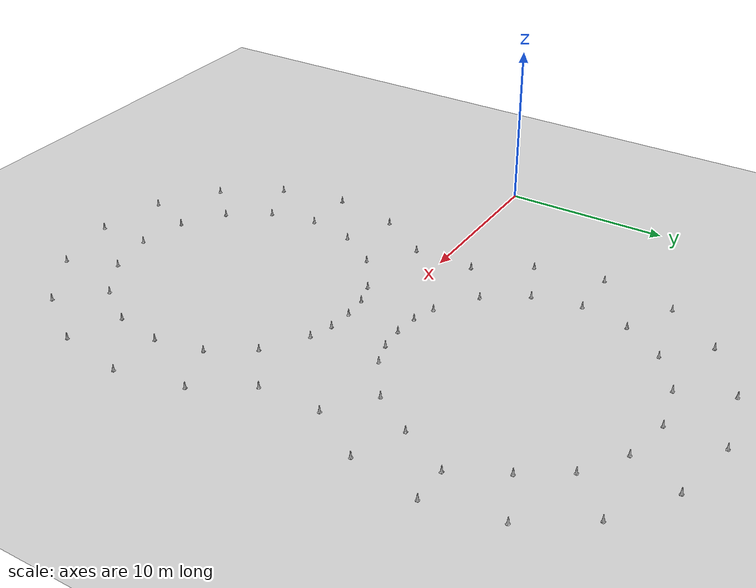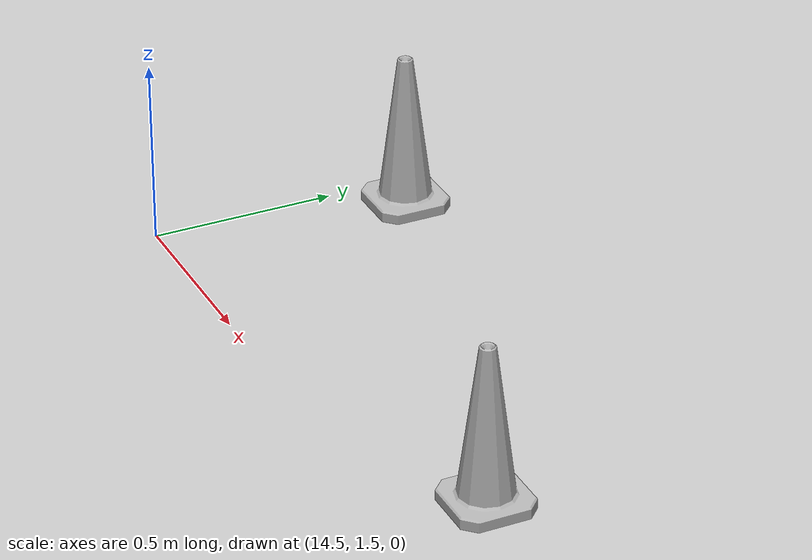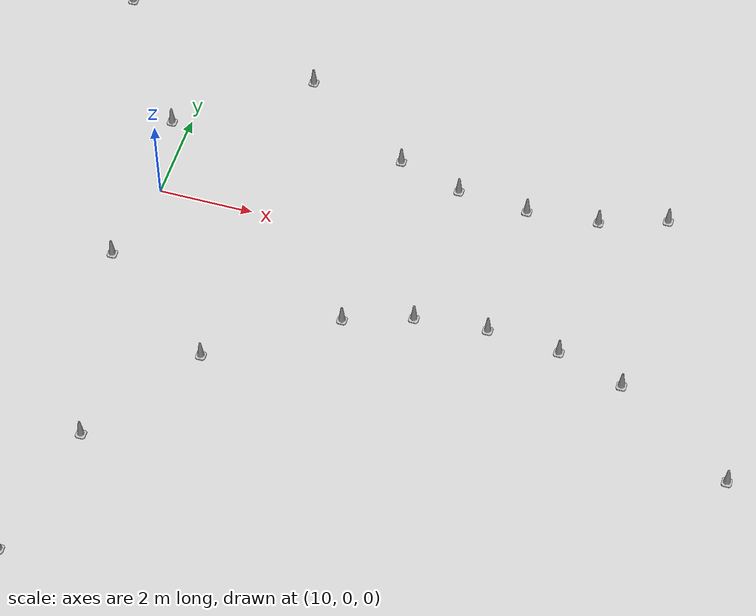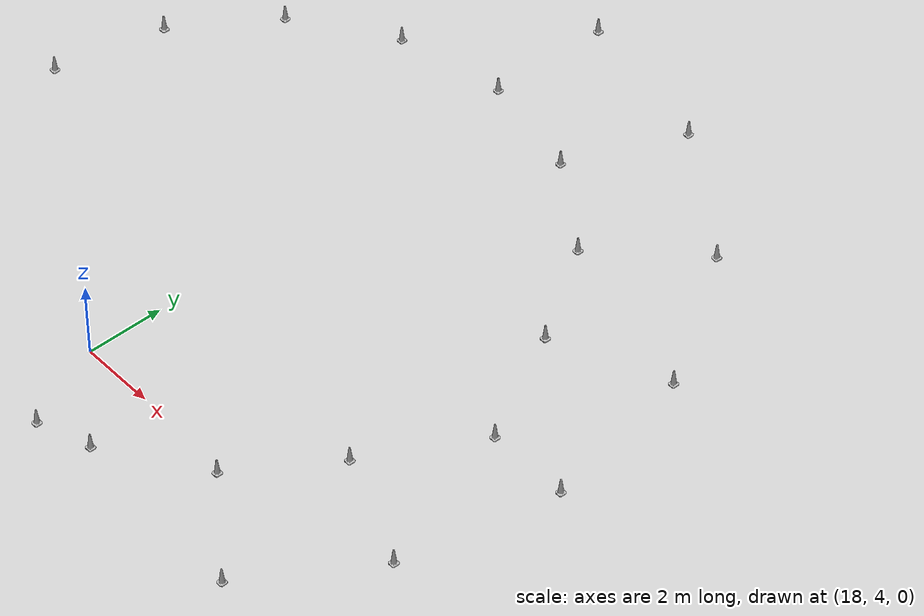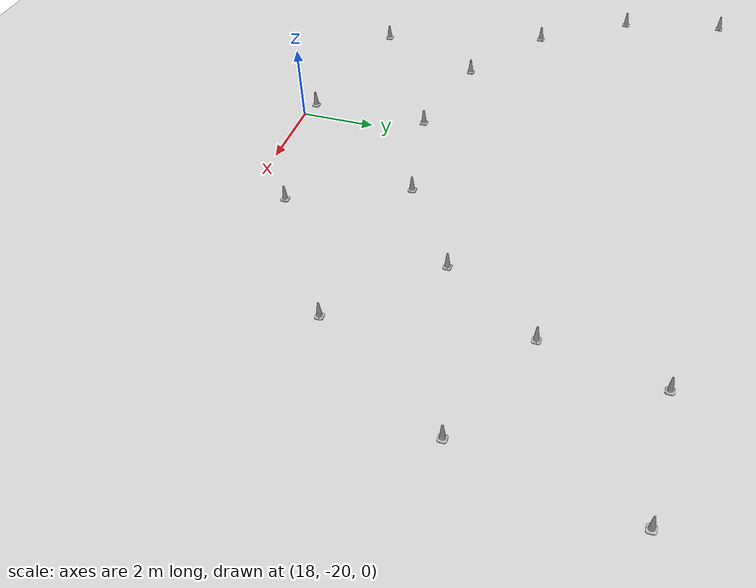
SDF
<sdf version="1.6">
 <world name="default">
  <light name="sun" type="directional">
   <pose>0 0 10 0 -0 0</pose>
   <diffuse>0.8 0.8 0.8 1</diffuse>
   <specular>0.2 0.2 0.2 1</specular>
   <attenuation>
    <range>1000</range>
    <constant>0.9</constant>
    <linear>0.01</linear>
    <quadratic>0.001</quadratic>
   </attenuation>
   <direction>-0.5 0.1 -0.9</direction>
  </light>
  <model name="ground_plane">
   <pose>19 0 0 0 -0 0</pose>
   <static>1</static>
   <link name="link">
    <collision name="collision">
     <geometry><plane><normal>0 0 1</normal><size>100 100</size></plane></geometry>
     <surface><friction><ode><mu>100</mu><mu2>50</mu2></ode></friction></surface>
    </collision>
    <visual name="visual">
     <cast_shadows>0</cast_shadows>
     <geometry><plane><normal>0 0 1</normal><size>100 100</size></plane></geometry>
     <material>
      <script><uri>file://media/materials/scripts/gazebo.material</uri><name>Gazebo/Grey</name></script>
     </material>
    </visual>
   </link>
  </model>
  <gravity>0 0 -9.8</gravity>
  <magnetic_field>6e-06 2.3e-05 -4.2e-05</magnetic_field>
  <atmosphere type="adiabatic"/>
  <physics name="default_physics" default="0" type="ode">
   <max_step_size>0.001</max_step_size>
   <real_time_factor>1</real_time_factor>
   <real_time_update_rate>1000</real_time_update_rate>
  </physics>
  <scene><ambient>0.4 0.4 0.4 1</ambient><background>0.7 0.7 0.7 1</background><shadows>1</shadows></scene>
  <spherical_coordinates>
   <surface_model>EARTH_WGS84</surface_model>
   <latitude_deg>0</latitude_deg>
   <longitude_deg>0</longitude_deg>
   <elevation>0</elevation>
   <heading_deg>0</heading_deg>
  </spherical_coordinates>
  <model name="Construction Cone">
   <link name="link">
    <collision name="collision">
     <geometry>
      <mesh><scale>4 4 4</scale><uri>model://construction_cone/meshes/construction_cone.dae</uri></mesh>
     </geometry>
    </collision>
    <visual name="visual">
     <geometry>
      <mesh><scale>4 4 4</scale><uri>model://construction_cone/meshes/construction_cone.dae</uri></mesh>
     </geometry>
    </visual>
    <inertial>
     <inertia><ixx>1</ixx><ixy>0</ixy><ixz>0</ixz><iyy>1</iyy><iyz>0</iyz><izz>1</izz></inertia>
     <mass>1</mass>
    </inertial>
   </link>
   <pose>17.5 1.6 -1e-06 2e-06 -2e-06 -0</pose>
  </model>
  <model name="Construction Cone_0">
   <link name="link">
    <collision name="collision">
     <geometry>
      <mesh><scale>4 4 4</scale><uri>model://construction_cone/meshes/construction_cone.dae</uri></mesh>
     </geometry>
    </collision>
    <visual name="visual">
     <geometry>
      <mesh><scale>4 4 4</scale><uri>model://construction_cone/meshes/construction_cone.dae</uri></mesh>
     </geometry>
    </visual>
    <inertial>
     <inertia><ixx>1</ixx><ixy>0</ixy><ixz>0</ixz><iyy>1</iyy><iyz>0</iyz><izz>1</izz></inertia>
     <mass>1</mass>
    </inertial>
   </link>
   <pose>17.5 -1.6 -3e-06 1e-06 -0 0</pose>
  </model>
  <model name="Construction Cone_1">
   <link name="link">
    <collision name="collision">
     <geometry>
      <mesh><scale>4 4 4</scale><uri>model://construction_cone/meshes/construction_cone.dae</uri></mesh>
     </geometry>
    </collision>
    <visual name="visual">
     <geometry>
      <mesh><scale>4 4 4</scale><uri>model://construction_cone/meshes/construction_cone.dae</uri></mesh>
     </geometry>
    </visual>
    <inertial>
     <inertia><ixx>1</ixx><ixy>0</ixy><ixz>0</ixz><iyy>1</iyy><iyz>0</iyz><izz>1</izz></inertia>
     <mass>1</mass>
    </inertial>
   </link>
   <pose>20.3797 2.1728 -0 1e-06 -2e-06 -0</pose>
  </model>
  <model name="Construction Cone_1_clone">
   <link name="link">
    <collision name="collision">
     <geometry>
      <mesh><scale>4 4 4</scale><uri>model://construction_cone/meshes/construction_cone.dae</uri></mesh>
     </geometry>
    </collision>
    <visual name="visual">
     <geometry>
      <mesh><scale>4 4 4</scale><uri>model://construction_cone/meshes/construction_cone.dae</uri></mesh>
     </geometry>
    </visual>
    <inertial>
     <inertia><ixx>1</ixx><ixy>0</ixy><ixz>0</ixz><iyy>1</iyy><iyz>0</iyz><izz>1</izz></inertia>
     <mass>1</mass>
    </inertial>
   </link>
   <pose>20.3797 -2.1728 -3e-06 -1e-06 0 0</pose>
  </model>
  <model name="Construction Cone_1_clone_0">
   <link name="link">
    <collision name="collision">
     <geometry>
      <mesh><scale>4 4 4</scale><uri>model://construction_cone/meshes/construction_cone.dae</uri></mesh>
     </geometry>
    </collision>
    <visual name="visual">
     <geometry>
      <mesh><scale>4 4 4</scale><uri>model://construction_cone/meshes/construction_cone.dae</uri></mesh>
     </geometry>
    </visual>
    <inertial>
     <inertia><ixx>1</ixx><ixy>0</ixy><ixz>0</ixz><iyy>1</iyy><iyz>0</iyz><izz>1</izz></inertia>
     <mass>1</mass>
    </inertial>
   </link>
   <pose>22.8209 3.804 -1e-05 0 -0 0</pose>
  </model>
  <model name="Construction Cone_1_clone_1">
   <link name="link">
    <collision name="collision">
     <geometry>
      <mesh><scale>4 4 4</scale><uri>model://construction_cone/meshes/construction_cone.dae</uri></mesh>
     </geometry>
    </collision>
    <visual name="visual">
     <geometry>
      <mesh><scale>4 4 4</scale><uri>model://construction_cone/meshes/construction_cone.dae</uri></mesh>
     </geometry>
    </visual>
    <inertial>
     <inertia><ixx>1</ixx><ixy>0</ixy><ixz>0</ixz><iyy>1</iyy><iyz>0</iyz><izz>1</izz></inertia>
     <mass>1</mass>
    </inertial>
   </link>
   <pose>24.4522 6.2453 -6e-06 0 1e-06 0</pose>
  </model>
  <model name="Construction Cone_1_clone_2">
   <link name="link">
    <collision name="collision">
     <geometry>
      <mesh><scale>4 4 4</scale><uri>model://construction_cone/meshes/construction_cone.dae</uri></mesh>
     </geometry>
    </collision>
    <visual name="visual">
     <geometry>
      <mesh><scale>4 4 4</scale><uri>model://construction_cone/meshes/construction_cone.dae</uri></mesh>
     </geometry>
    </visual>
    <inertial>
     <inertia><ixx>1</ixx><ixy>0</ixy><ixz>0</ixz><iyy>1</iyy><iyz>0</iyz><izz>1</izz></inertia>
     <mass>1</mass>
    </inertial>
   </link>
   <pose>26.025 9.125 -1e-05 -1e-06 1e-06 0</pose>
  </model>
  <model name="Construction Cone_1_clone_3">
   <link name="link">
    <collision name="collision">
     <geometry>
      <mesh><scale>4 4 4</scale><uri>model://construction_cone/meshes/construction_cone.dae</uri></mesh>
     </geometry>
    </collision>
    <visual name="visual">
     <geometry>
      <mesh><scale>4 4 4</scale><uri>model://construction_cone/meshes/construction_cone.dae</uri></mesh>
     </geometry>
    </visual>
    <inertial>
     <inertia><ixx>1</ixx><ixy>0</ixy><ixz>0</ixz><iyy>1</iyy><iyz>0</iyz><izz>1</izz></inertia>
     <mass>1</mass>
    </inertial>
   </link>
   <pose>22.8209 -3.804 -1e-06 1e-06 1e-06 0</pose>
  </model>
  <model name="Construction Cone_1_clone_4">
   <link name="link">
    <collision name="collision">
     <geometry>
      <mesh><scale>4 4 4</scale><uri>model://construction_cone/meshes/construction_cone.dae</uri></mesh>
     </geometry>
    </collision>
    <visual name="visual">
     <geometry>
      <mesh><scale>4 4 4</scale><uri>model://construction_cone/meshes/construction_cone.dae</uri></mesh>
     </geometry>
    </visual>
    <inertial>
     <inertia><ixx>1</ixx><ixy>0</ixy><ixz>0</ixz><iyy>1</iyy><iyz>0</iyz><izz>1</izz></inertia>
     <mass>1</mass>
    </inertial>
   </link>
   <pose>24.4522 -6.2453 -9e-06 1e-06 -2e-06 -0</pose>
  </model>
  <model name="Construction Cone_1_clone_5">
   <link name="link">
    <collision name="collision">
     <geometry>
      <mesh><scale>4 4 4</scale><uri>model://construction_cone/meshes/construction_cone.dae</uri></mesh>
     </geometry>
    </collision>
    <visual name="visual">
     <geometry>
      <mesh><scale>4 4 4</scale><uri>model://construction_cone/meshes/construction_cone.dae</uri></mesh>
     </geometry>
    </visual>
    <inertial>
     <inertia><ixx>1</ixx><ixy>0</ixy><ixz>0</ixz><iyy>1</iyy><iyz>0</iyz><izz>1</izz></inertia>
     <mass>1</mass>
    </inertial>
   </link>
   <pose>25.025 -9.125 -3e-06 1e-06 -0 0</pose>
  </model>
  <model name="Construction Cone_1_clone_6">
   <link name="link">
    <collision name="collision">
     <geometry>
      <mesh><scale>4 4 4</scale><uri>model://construction_cone/meshes/construction_cone.dae</uri></mesh>
     </geometry>
    </collision>
    <visual name="visual">
     <geometry>
      <mesh><scale>4 4 4</scale><uri>model://construction_cone/meshes/construction_cone.dae</uri></mesh>
     </geometry>
    </visual>
    <inertial>
     <inertia><ixx>1</ixx><ixy>0</ixy><ixz>0</ixz><iyy>1</iyy><iyz>0</iyz><izz>1</izz></inertia>
     <mass>1</mass>
    </inertial>
   </link>
   <pose>24.4522 12.004 -8e-06 0 -4e-06 0</pose>
  </model>
  <model name="Construction Cone_1_clone_7">
   <link name="link">
    <collision name="collision">
     <geometry>
      <mesh><scale>4 4 4</scale><uri>model://construction_cone/meshes/construction_cone.dae</uri></mesh>
     </geometry>
    </collision>
    <visual name="visual">
     <geometry>
      <mesh><scale>4 4 4</scale><uri>model://construction_cone/meshes/construction_cone.dae</uri></mesh>
     </geometry>
    </visual>
    <inertial>
     <inertia><ixx>1</ixx><ixy>0</ixy><ixz>0</ixz><iyy>1</iyy><iyz>0</iyz><izz>1</izz></inertia>
     <mass>1</mass>
    </inertial>
   </link>
   <pose>22.8209 14.446 -3e-06 0 -0 0</pose>
  </model>
  <model name="Construction Cone_1_clone_8">
   <link name="link">
    <collision name="collision">
     <geometry>
      <mesh><scale>4 4 4</scale><uri>model://construction_cone/meshes/construction_cone.dae</uri></mesh>
     </geometry>
    </collision>
    <visual name="visual">
     <geometry>
      <mesh><scale>4 4 4</scale><uri>model://construction_cone/meshes/construction_cone.dae</uri></mesh>
     </geometry>
    </visual>
    <inertial>
     <inertia><ixx>1</ixx><ixy>0</ixy><ixz>0</ixz><iyy>1</iyy><iyz>0</iyz><izz>1</izz></inertia>
     <mass>1</mass>
    </inertial>
   </link>
   <pose>20.3797 16.0772 -8e-06 2e-06 -1e-06 -0</pose>
  </model>
  <model name="Construction Cone_1_clone_9">
   <link name="link">
    <collision name="collision">
     <geometry>
      <mesh><scale>4 4 4</scale><uri>model://construction_cone/meshes/construction_cone.dae</uri></mesh>
     </geometry>
    </collision>
    <visual name="visual">
     <geometry>
      <mesh><scale>4 4 4</scale><uri>model://construction_cone/meshes/construction_cone.dae</uri></mesh>
     </geometry>
    </visual>
    <inertial>
     <inertia><ixx>1</ixx><ixy>0</ixy><ixz>0</ixz><iyy>1</iyy><iyz>0</iyz><izz>1</izz></inertia>
     <mass>1</mass>
    </inertial>
   </link>
   <pose>17.5 16.65 -2e-06 1e-06 -0 0</pose>
  </model>
  <model name="Construction Cone_1_clone_10">
   <link name="link">
    <collision name="collision">
     <geometry>
      <mesh><scale>4 4 4</scale><uri>model://construction_cone/meshes/construction_cone.dae</uri></mesh>
     </geometry>
    </collision>
    <visual name="visual">
     <geometry>
      <mesh><scale>4 4 4</scale><uri>model://construction_cone/meshes/construction_cone.dae</uri></mesh>
     </geometry>
    </visual>
    <inertial>
     <inertia><ixx>1</ixx><ixy>0</ixy><ixz>0</ixz><iyy>1</iyy><iyz>0</iyz><izz>1</izz></inertia>
     <mass>1</mass>
    </inertial>
   </link>
   <pose>24.4522 -12.0047 -4e-06 2e-06 -1e-06 -0</pose>
  </model>
  <model name="Construction Cone_1_clone_11">
   <link name="link">
    <collision name="collision">
     <geometry>
      <mesh><scale>4 4 4</scale><uri>model://construction_cone/meshes/construction_cone.dae</uri></mesh>
     </geometry>
    </collision>
    <visual name="visual">
     <geometry>
      <mesh><scale>4 4 4</scale><uri>model://construction_cone/meshes/construction_cone.dae</uri></mesh>
     </geometry>
    </visual>
    <inertial>
     <inertia><ixx>1</ixx><ixy>0</ixy><ixz>0</ixz><iyy>1</iyy><iyz>0</iyz><izz>1</izz></inertia>
     <mass>1</mass>
    </inertial>
   </link>
   <pose>22.8209 -14.446 -9e-06 1e-06 -2e-06 -0</pose>
  </model>
  <model name="Construction Cone_1_clone_12">
   <link name="link">
    <collision name="collision">
     <geometry>
      <mesh><scale>4 4 4</scale><uri>model://construction_cone/meshes/construction_cone.dae</uri></mesh>
     </geometry>
    </collision>
    <visual name="visual">
     <geometry>
      <mesh><scale>4 4 4</scale><uri>model://construction_cone/meshes/construction_cone.dae</uri></mesh>
     </geometry>
    </visual>
    <inertial>
     <inertia><ixx>1</ixx><ixy>0</ixy><ixz>0</ixz><iyy>1</iyy><iyz>0</iyz><izz>1</izz></inertia>
     <mass>1</mass>
    </inertial>
   </link>
   <pose>20.3797 -16.0772 -6e-06 2e-06 -1e-06 -0</pose>
  </model>
  <model name="Construction Cone_1_clone_13">
   <link name="link">
    <collision name="collision">
     <geometry>
      <mesh><scale>4 4 4</scale><uri>model://construction_cone/meshes/construction_cone.dae</uri></mesh>
     </geometry>
    </collision>
    <visual name="visual">
     <geometry>
      <mesh><scale>4 4 4</scale><uri>model://construction_cone/meshes/construction_cone.dae</uri></mesh>
     </geometry>
    </visual>
    <inertial>
     <inertia><ixx>1</ixx><ixy>0</ixy><ixz>0</ixz><iyy>1</iyy><iyz>0</iyz><izz>1</izz></inertia>
     <mass>1</mass>
    </inertial>
   </link>
   <pose>17.5 -16.65 -9e-06 -1e-06 0 0</pose>
  </model>
  <model name="Construction Cone_1_clone_14">
   <link name="link">
    <collision name="collision">
     <geometry>
      <mesh><scale>4 4 4</scale><uri>model://construction_cone/meshes/construction_cone.dae</uri></mesh>
     </geometry>
    </collision>
    <visual name="visual">
     <geometry>
      <mesh><scale>4 4 4</scale><uri>model://construction_cone/meshes/construction_cone.dae</uri></mesh>
     </geometry>
    </visual>
    <inertial>
     <inertia><ixx>1</ixx><ixy>0</ixy><ixz>0</ixz><iyy>1</iyy><iyz>0</iyz><izz>1</izz></inertia>
     <mass>1</mass>
    </inertial>
   </link>
   <pose>14.6203 2.1728 0 -1e-06 1e-06 0</pose>
  </model>
  <model name="Construction Cone_1_clone_15">
   <link name="link">
    <collision name="collision">
     <geometry>
      <mesh><scale>4 4 4</scale><uri>model://construction_cone/meshes/construction_cone.dae</uri></mesh>
     </geometry>
    </collision>
    <visual name="visual">
     <geometry>
      <mesh><scale>4 4 4</scale><uri>model://construction_cone/meshes/construction_cone.dae</uri></mesh>
     </geometry>
    </visual>
    <inertial>
     <inertia><ixx>1</ixx><ixy>0</ixy><ixz>0</ixz><iyy>1</iyy><iyz>0</iyz><izz>1</izz></inertia>
     <mass>1</mass>
    </inertial>
   </link>
   <pose>12.1791 3.804 -9e-06 0 -1e-06 0</pose>
  </model>
  <model name="Construction Cone_1_clone_16">
   <link name="link">
    <collision name="collision">
     <geometry>
      <mesh><scale>4 4 4</scale><uri>model://construction_cone/meshes/construction_cone.dae</uri></mesh>
     </geometry>
    </collision>
    <visual name="visual">
     <geometry>
      <mesh><scale>4 4 4</scale><uri>model://construction_cone/meshes/construction_cone.dae</uri></mesh>
     </geometry>
    </visual>
    <inertial>
     <inertia><ixx>1</ixx><ixy>0</ixy><ixz>0</ixz><iyy>1</iyy><iyz>0</iyz><izz>1</izz></inertia>
     <mass>1</mass>
    </inertial>
   </link>
   <pose>10.5478 6.2453 -8e-06 0 -0 0</pose>
  </model>
  <model name="Construction Cone_1_clone_17">
   <link name="link">
    <collision name="collision">
     <geometry>
      <mesh><scale>4 4 4</scale><uri>model://construction_cone/meshes/construction_cone.dae</uri></mesh>
     </geometry>
    </collision>
    <visual name="visual">
     <geometry>
      <mesh><scale>4 4 4</scale><uri>model://construction_cone/meshes/construction_cone.dae</uri></mesh>
     </geometry>
    </visual>
    <inertial>
     <inertia><ixx>1</ixx><ixy>0</ixy><ixz>0</ixz><iyy>1</iyy><iyz>0</iyz><izz>1</izz></inertia>
     <mass>1</mass>
    </inertial>
   </link>
   <pose>9.975 9.125 -2e-06 0 -0 0</pose>
  </model>
  <model name="Construction Cone_1_clone_18">
   <link name="link">
    <collision name="collision">
     <geometry>
      <mesh><scale>4 4 4</scale><uri>model://construction_cone/meshes/construction_cone.dae</uri></mesh>
     </geometry>
    </collision>
    <visual name="visual">
     <geometry>
      <mesh><scale>4 4 4</scale><uri>model://construction_cone/meshes/construction_cone.dae</uri></mesh>
     </geometry>
    </visual>
    <inertial>
     <inertia><ixx>1</ixx><ixy>0</ixy><ixz>0</ixz><iyy>1</iyy><iyz>0</iyz><izz>1</izz></inertia>
     <mass>1</mass>
    </inertial>
   </link>
   <pose>10.5478 12.004 0 0 2e-06 0</pose>
  </model>
  <model name="Construction Cone_1_clone_19">
   <link name="link">
    <collision name="collision">
     <geometry>
      <mesh><scale>4 4 4</scale><uri>model://construction_cone/meshes/construction_cone.dae</uri></mesh>
     </geometry>
    </collision>
    <visual name="visual">
     <geometry>
      <mesh><scale>4 4 4</scale><uri>model://construction_cone/meshes/construction_cone.dae</uri></mesh>
     </geometry>
    </visual>
    <inertial>
     <inertia><ixx>1</ixx><ixy>0</ixy><ixz>0</ixz><iyy>1</iyy><iyz>0</iyz><izz>1</izz></inertia>
     <mass>1</mass>
    </inertial>
   </link>
   <pose>12.1791 14.446 -3e-06 0 1e-06 0</pose>
  </model>
  <model name="Construction Cone_1_clone_20">
   <link name="link">
    <collision name="collision">
     <geometry>
      <mesh><scale>4 4 4</scale><uri>model://construction_cone/meshes/construction_cone.dae</uri></mesh>
     </geometry>
    </collision>
    <visual name="visual">
     <geometry>
      <mesh><scale>4 4 4</scale><uri>model://construction_cone/meshes/construction_cone.dae</uri></mesh>
     </geometry>
    </visual>
    <inertial>
     <inertia><ixx>1</ixx><ixy>0</ixy><ixz>0</ixz><iyy>1</iyy><iyz>0</iyz><izz>1</izz></inertia>
     <mass>1</mass>
    </inertial>
   </link>
   <pose>14.6203 16.0772 -1e-06 0 -0 0</pose>
  </model>
  <model name="Construction Cone_1_clone_21">
   <link name="link">
    <collision name="collision">
     <geometry>
      <mesh><scale>4 4 4</scale><uri>model://construction_cone/meshes/construction_cone.dae</uri></mesh>
     </geometry>
    </collision>
    <visual name="visual">
     <geometry>
      <mesh><scale>4 4 4</scale><uri>model://construction_cone/meshes/construction_cone.dae</uri></mesh>
     </geometry>
    </visual>
    <inertial>
     <inertia><ixx>1</ixx><ixy>0</ixy><ixz>0</ixz><iyy>1</iyy><iyz>0</iyz><izz>1</izz></inertia>
     <mass>1</mass>
    </inertial>
   </link>
   <pose>14.6203 -2.1728 -9e-06 1e-06 5e-06 0</pose>
  </model>
  <model name="Construction Cone_1_clone_22">
   <link name="link">
    <collision name="collision">
     <geometry>
      <mesh><scale>4 4 4</scale><uri>model://construction_cone/meshes/construction_cone.dae</uri></mesh>
     </geometry>
    </collision>
    <visual name="visual">
     <geometry>
      <mesh><scale>4 4 4</scale><uri>model://construction_cone/meshes/construction_cone.dae</uri></mesh>
     </geometry>
    </visual>
    <inertial>
     <inertia><ixx>1</ixx><ixy>0</ixy><ixz>0</ixz><iyy>1</iyy><iyz>0</iyz><izz>1</izz></inertia>
     <mass>1</mass>
    </inertial>
   </link>
   <pose>12.1791 -3.804 -0 2e-06 -0 0</pose>
  </model>
  <model name="Construction Cone_1_clone_23">
   <link name="link">
    <collision name="collision">
     <geometry>
      <mesh><scale>4 4 4</scale><uri>model://construction_cone/meshes/construction_cone.dae</uri></mesh>
     </geometry>
    </collision>
    <visual name="visual">
     <geometry>
      <mesh><scale>4 4 4</scale><uri>model://construction_cone/meshes/construction_cone.dae</uri></mesh>
     </geometry>
    </visual>
    <inertial>
     <inertia><ixx>1</ixx><ixy>0</ixy><ixz>0</ixz><iyy>1</iyy><iyz>0</iyz><izz>1</izz></inertia>
     <mass>1</mass>
    </inertial>
   </link>
   <pose>10.5478 -6.2453 -3e-06 0 -0 0</pose>
  </model>
  <model name="Construction Cone_1_clone_24">
   <link name="link">
    <collision name="collision">
     <geometry>
      <mesh><scale>4 4 4</scale><uri>model://construction_cone/meshes/construction_cone.dae</uri></mesh>
     </geometry>
    </collision>
    <visual name="visual">
     <geometry>
      <mesh><scale>4 4 4</scale><uri>model://construction_cone/meshes/construction_cone.dae</uri></mesh>
     </geometry>
    </visual>
    <inertial>
     <inertia><ixx>1</ixx><ixy>0</ixy><ixz>0</ixz><iyy>1</iyy><iyz>0</iyz><izz>1</izz></inertia>
     <mass>1</mass>
    </inertial>
   </link>
   <pose>9.975 -9.125 -3e-06 0 2e-06 0</pose>
  </model>
  <model name="Construction Cone_1_clone_25">
   <link name="link">
    <collision name="collision">
     <geometry>
      <mesh><scale>4 4 4</scale><uri>model://construction_cone/meshes/construction_cone.dae</uri></mesh>
     </geometry>
    </collision>
    <visual name="visual">
     <geometry>
      <mesh><scale>4 4 4</scale><uri>model://construction_cone/meshes/construction_cone.dae</uri></mesh>
     </geometry>
    </visual>
    <inertial>
     <inertia><ixx>1</ixx><ixy>0</ixy><ixz>0</ixz><iyy>1</iyy><iyz>0</iyz><izz>1</izz></inertia>
     <mass>1</mass>
    </inertial>
   </link>
   <pose>10.5478 -12.0047 -1e-06 2e-06 -0 0</pose>
  </model>
  <model name="Construction Cone_1_clone_26">
   <link name="link">
    <collision name="collision">
     <geometry>
      <mesh><scale>4 4 4</scale><uri>model://construction_cone/meshes/construction_cone.dae</uri></mesh>
     </geometry>
    </collision>
    <visual name="visual">
     <geometry>
      <mesh><scale>4 4 4</scale><uri>model://construction_cone/meshes/construction_cone.dae</uri></mesh>
     </geometry>
    </visual>
    <inertial>
     <inertia><ixx>1</ixx><ixy>0</ixy><ixz>0</ixz><iyy>1</iyy><iyz>0</iyz><izz>1</izz></inertia>
     <mass>1</mass>
    </inertial>
   </link>
   <pose>12.1791 -14.446 -1e-06 2e-06 -0 0</pose>
  </model>
  <model name="Construction Cone_1_clone_27">
   <link name="link">
    <collision name="collision">
     <geometry>
      <mesh><scale>4 4 4</scale><uri>model://construction_cone/meshes/construction_cone.dae</uri></mesh>
     </geometry>
    </collision>
    <visual name="visual">
     <geometry>
      <mesh><scale>4 4 4</scale><uri>model://construction_cone/meshes/construction_cone.dae</uri></mesh>
     </geometry>
    </visual>
    <inertial>
     <inertia><ixx>1</ixx><ixy>0</ixy><ixz>0</ixz><iyy>1</iyy><iyz>0</iyz><izz>1</izz></inertia>
     <mass>1</mass>
    </inertial>
   </link>
   <pose>14.6203 -16.0772 -1e-06 -1e-06 1e-06 0</pose>
  </model>
  <model name="Construction Cone_1_clone_28">
   <link name="link">
    <collision name="collision">
     <geometry>
      <mesh><scale>4 4 4</scale><uri>model://construction_cone/meshes/construction_cone.dae</uri></mesh>
     </geometry>
    </collision>
    <visual name="visual">
     <geometry>
      <mesh><scale>4 4 4</scale><uri>model://construction_cone/meshes/construction_cone.dae</uri></mesh>
     </geometry>
    </visual>
    <inertial>
     <inertia><ixx>1</ixx><ixy>0</ixy><ixz>0</ixz><iyy>1</iyy><iyz>0</iyz><izz>1</izz></inertia>
     <mass>1</mass>
    </inertial>
   </link>
   <pose>27.4086 5.0207 -9e-06 -1e-06 1e-06 0</pose>
  </model>
  <model name="Construction Cone_1_clone_29">
   <link name="link">
    <collision name="collision">
     <geometry>
      <mesh><scale>4 4 4</scale><uri>model://construction_cone/meshes/construction_cone.dae</uri></mesh>
     </geometry>
    </collision>
    <visual name="visual">
     <geometry>
      <mesh><scale>4 4 4</scale><uri>model://construction_cone/meshes/construction_cone.dae</uri></mesh>
     </geometry>
    </visual>
    <inertial>
     <inertia><ixx>1</ixx><ixy>0</ixy><ixz>0</ixz><iyy>1</iyy><iyz>0</iyz><izz>1</izz></inertia>
     <mass>1</mass>
    </inertial>
   </link>
   <pose>28.225 9.125 0 1e-06 -1e-06 0</pose>
  </model>
  <model name="Construction Cone_1_clone_30">
   <link name="link">
    <collision name="collision">
     <geometry>
      <mesh><scale>4 4 4</scale><uri>model://construction_cone/meshes/construction_cone.dae</uri></mesh>
     </geometry>
    </collision>
    <visual name="visual">
     <geometry>
      <mesh><scale>4 4 4</scale><uri>model://construction_cone/meshes/construction_cone.dae</uri></mesh>
     </geometry>
    </visual>
    <inertial>
     <inertia><ixx>1</ixx><ixy>0</ixy><ixz>0</ixz><iyy>1</iyy><iyz>0</iyz><izz>1</izz></inertia>
     <mass>1</mass>
    </inertial>
   </link>
   <pose>25.4 1.87 -1e-06 1e-06 -2e-06 -0</pose>
  </model>
  <model name="Construction Cone_1_clone_31">
   <link name="link">
    <collision name="collision">
     <geometry>
      <mesh><scale>4 4 4</scale><uri>model://construction_cone/meshes/construction_cone.dae</uri></mesh>
     </geometry>
    </collision>
    <visual name="visual">
     <geometry>
      <mesh><scale>4 4 4</scale><uri>model://construction_cone/meshes/construction_cone.dae</uri></mesh>
     </geometry>
    </visual>
    <inertial>
     <inertia><ixx>1</ixx><ixy>0</ixy><ixz>0</ixz><iyy>1</iyy><iyz>0</iyz><izz>1</izz></inertia>
     <mass>1</mass>
    </inertial>
   </link>
   <pose>27.4086 13.229 -5e-06 1e-06 -0 0</pose>
  </model>
  <model name="Construction Cone_1_clone_32">
   <link name="link">
    <collision name="collision">
     <geometry>
      <mesh><scale>4 4 4</scale><uri>model://construction_cone/meshes/construction_cone.dae</uri></mesh>
     </geometry>
    </collision>
    <visual name="visual">
     <geometry>
      <mesh><scale>4 4 4</scale><uri>model://construction_cone/meshes/construction_cone.dae</uri></mesh>
     </geometry>
    </visual>
    <inertial>
     <inertia><ixx>1</ixx><ixy>0</ixy><ixz>0</ixz><iyy>1</iyy><iyz>0</iyz><izz>1</izz></inertia>
     <mass>1</mass>
    </inertial>
   </link>
   <pose>25.0836 16.7082 0 2e-06 -1e-06 1.42622</pose>
  </model>
  <model name="Construction Cone_1_clone_33">
   <link name="link">
    <collision name="collision">
     <geometry>
      <mesh><scale>4 4 4</scale><uri>model://construction_cone/meshes/construction_cone.dae</uri></mesh>
     </geometry>
    </collision>
    <visual name="visual">
     <geometry>
      <mesh><scale>4 4 4</scale><uri>model://construction_cone/meshes/construction_cone.dae</uri></mesh>
     </geometry>
    </visual>
    <inertial>
     <inertia><ixx>1</ixx><ixy>0</ixy><ixz>0</ixz><iyy>1</iyy><iyz>0</iyz><izz>1</izz></inertia>
     <mass>1</mass>
    </inertial>
   </link>
   <pose>21.6043 19.0336 -2e-06 1e-06 2e-06 0</pose>
  </model>
  <model name="Construction Cone_1_clone_34">
   <link name="link">
    <collision name="collision">
     <geometry>
      <mesh><scale>4 4 4</scale><uri>model://construction_cone/meshes/construction_cone.dae</uri></mesh>
     </geometry>
    </collision>
    <visual name="visual">
     <geometry>
      <mesh><scale>4 4 4</scale><uri>model://construction_cone/meshes/construction_cone.dae</uri></mesh>
     </geometry>
    </visual>
    <inertial>
     <inertia><ixx>1</ixx><ixy>0</ixy><ixz>0</ixz><iyy>1</iyy><iyz>0</iyz><izz>1</izz></inertia>
     <mass>1</mass>
    </inertial>
   </link>
   <pose>17.5 19.85 -8e-06 0 3e-06 0</pose>
  </model>
  <model name="Construction Cone_1_clone_35">
   <link name="link">
    <collision name="collision">
     <geometry>
      <mesh><scale>4 4 4</scale><uri>model://construction_cone/meshes/construction_cone.dae</uri></mesh>
     </geometry>
    </collision>
    <visual name="visual">
     <geometry>
      <mesh><scale>4 4 4</scale><uri>model://construction_cone/meshes/construction_cone.dae</uri></mesh>
     </geometry>
    </visual>
    <inertial>
     <inertia><ixx>1</ixx><ixy>0</ixy><ixz>0</ixz><iyy>1</iyy><iyz>0</iyz><izz>1</izz></inertia>
     <mass>1</mass>
    </inertial>
   </link>
   <pose>13.3957 19.0336 -0 -2e-06 1e-06 -0</pose>
  </model>
  <model name="Construction Cone_1_clone_36">
   <link name="link">
    <collision name="collision">
     <geometry>
      <mesh><scale>4 4 4</scale><uri>model://construction_cone/meshes/construction_cone.dae</uri></mesh>
     </geometry>
    </collision>
    <visual name="visual">
     <geometry>
      <mesh><scale>4 4 4</scale><uri>model://construction_cone/meshes/construction_cone.dae</uri></mesh>
     </geometry>
    </visual>
    <inertial>
     <inertia><ixx>1</ixx><ixy>0</ixy><ixz>0</ixz><iyy>1</iyy><iyz>0</iyz><izz>1</izz></inertia>
     <mass>1</mass>
    </inertial>
   </link>
   <pose>9.91631 16.7087 -9e-06 3e-06 -0 0.003194</pose>
  </model>
  <model name="Construction Cone_1_clone_38">
   <link name="link">
    <collision name="collision">
     <geometry>
      <mesh><scale>4 4 4</scale><uri>model://construction_cone/meshes/construction_cone.dae</uri></mesh>
     </geometry>
    </collision>
    <visual name="visual">
     <geometry>
      <mesh><scale>4 4 4</scale><uri>model://construction_cone/meshes/construction_cone.dae</uri></mesh>
     </geometry>
    </visual>
    <inertial>
     <inertia><ixx>1</ixx><ixy>0</ixy><ixz>0</ixz><iyy>1</iyy><iyz>0</iyz><izz>1</izz></inertia>
     <mass>1</mass>
    </inertial>
   </link>
   <pose>6.775 9.125 -7e-06 1e-06 -0 0</pose>
  </model>
  <model name="Construction Cone_1_clone_39">
   <link name="link">
    <collision name="collision">
     <geometry>
      <mesh><scale>4 4 4</scale><uri>model://construction_cone/meshes/construction_cone.dae</uri></mesh>
     </geometry>
    </collision>
    <visual name="visual">
     <geometry>
      <mesh><scale>4 4 4</scale><uri>model://construction_cone/meshes/construction_cone.dae</uri></mesh>
     </geometry>
    </visual>
    <inertial>
     <inertia><ixx>1</ixx><ixy>0</ixy><ixz>0</ixz><iyy>1</iyy><iyz>0</iyz><izz>1</izz></inertia>
     <mass>1</mass>
    </inertial>
   </link>
   <pose>7.5914 5.0207 -1e-06 0 3e-06 0</pose>
  </model>
  <model name="Construction Cone_1_clone_40">
   <link name="link">
    <collision name="collision">
     <geometry>
      <mesh><scale>4 4 4</scale><uri>model://construction_cone/meshes/construction_cone.dae</uri></mesh>
     </geometry>
    </collision>
    <visual name="visual">
     <geometry>
      <mesh><scale>4 4 4</scale><uri>model://construction_cone/meshes/construction_cone.dae</uri></mesh>
     </geometry>
    </visual>
    <inertial>
     <inertia><ixx>1</ixx><ixy>0</ixy><ixz>0</ixz><iyy>1</iyy><iyz>0</iyz><izz>1</izz></inertia>
     <mass>1</mass>
    </inertial>
   </link>
   <pose>9.6 1.87 -9e-06 0 -2e-06 0</pose>
  </model>
  <model name="Construction Cone_1_clone_41">
   <link name="link">
    <collision name="collision">
     <geometry>
      <mesh><scale>4 4 4</scale><uri>model://construction_cone/meshes/construction_cone.dae</uri></mesh>
     </geometry>
    </collision>
    <visual name="visual">
     <geometry>
      <mesh><scale>4 4 4</scale><uri>model://construction_cone/meshes/construction_cone.dae</uri></mesh>
     </geometry>
    </visual>
    <inertial>
     <inertia><ixx>1</ixx><ixy>0</ixy><ixz>0</ixz><iyy>1</iyy><iyz>0</iyz><izz>1</izz></inertia>
     <mass>1</mass>
    </inertial>
   </link>
   <pose>25.4 -1.87 -9e-06 3e-06 -1e-06 0</pose>
  </model>
  <model name="Construction Cone_1_clone_42">
   <link name="link">
    <collision name="collision">
     <geometry>
      <mesh><scale>4 4 4</scale><uri>model://construction_cone/meshes/construction_cone.dae</uri></mesh>
     </geometry>
    </collision>
    <visual name="visual">
     <geometry>
      <mesh><scale>4 4 4</scale><uri>model://construction_cone/meshes/construction_cone.dae</uri></mesh>
     </geometry>
    </visual>
    <inertial>
     <inertia><ixx>1</ixx><ixy>0</ixy><ixz>0</ixz><iyy>1</iyy><iyz>0</iyz><izz>1</izz></inertia>
     <mass>1</mass>
    </inertial>
   </link>
   <pose>27.4086 -5.0207 -9e-06 1e-06 -0 0</pose>
  </model>
  <model name="Construction Cone_1_clone_43">
   <link name="link">
    <collision name="collision">
     <geometry>
      <mesh><scale>4 4 4</scale><uri>model://construction_cone/meshes/construction_cone.dae</uri></mesh>
     </geometry>
    </collision>
    <visual name="visual">
     <geometry>
      <mesh><scale>4 4 4</scale><uri>model://construction_cone/meshes/construction_cone.dae</uri></mesh>
     </geometry>
    </visual>
    <inertial>
     <inertia><ixx>1</ixx><ixy>0</ixy><ixz>0</ixz><iyy>1</iyy><iyz>0</iyz><izz>1</izz></inertia>
     <mass>1</mass>
    </inertial>
   </link>
   <pose>28.225 -9.125 0 1e-06 -1e-06 0</pose>
  </model>
  <model name="Construction Cone_1_clone_44">
   <link name="link">
    <collision name="collision">
     <geometry>
      <mesh><scale>4 4 4</scale><uri>model://construction_cone/meshes/construction_cone.dae</uri></mesh>
     </geometry>
    </collision>
    <visual name="visual">
     <geometry>
      <mesh><scale>4 4 4</scale><uri>model://construction_cone/meshes/construction_cone.dae</uri></mesh>
     </geometry>
    </visual>
    <inertial>
     <inertia><ixx>1</ixx><ixy>0</ixy><ixz>0</ixz><iyy>1</iyy><iyz>0</iyz><izz>1</izz></inertia>
     <mass>1</mass>
    </inertial>
   </link>
   <pose>27.4086 -13.229 -0 -1e-06 1e-06 0</pose>
  </model>
  <model name="Construction Cone_1_clone_45">
   <link name="link">
    <collision name="collision">
     <geometry>
      <mesh><scale>4 4 4</scale><uri>model://construction_cone/meshes/construction_cone.dae</uri></mesh>
     </geometry>
    </collision>
    <visual name="visual">
     <geometry>
      <mesh><scale>4 4 4</scale><uri>model://construction_cone/meshes/construction_cone.dae</uri></mesh>
     </geometry>
    </visual>
    <inertial>
     <inertia><ixx>1</ixx><ixy>0</ixy><ixz>0</ixz><iyy>1</iyy><iyz>0</iyz><izz>1</izz></inertia>
     <mass>1</mass>
    </inertial>
   </link>
   <pose>25.0837 -16.7087 -9e-06 -1e-06 0 0</pose>
  </model>
  <model name="Construction Cone_1_clone_46">
   <link name="link">
    <collision name="collision">
     <geometry>
      <mesh><scale>4 4 4</scale><uri>model://construction_cone/meshes/construction_cone.dae</uri></mesh>
     </geometry>
    </collision>
    <visual name="visual">
     <geometry>
      <mesh><scale>4 4 4</scale><uri>model://construction_cone/meshes/construction_cone.dae</uri></mesh>
     </geometry>
    </visual>
    <inertial>
     <inertia><ixx>1</ixx><ixy>0</ixy><ixz>0</ixz><iyy>1</iyy><iyz>0</iyz><izz>1</izz></inertia>
     <mass>1</mass>
    </inertial>
   </link>
   <pose>21.6043 -19.0336 -3e-06 -1e-06 1e-06 0</pose>
  </model>
  <model name="Construction Cone_1_clone_47">
   <link name="link">
    <collision name="collision">
     <geometry>
      <mesh><scale>4 4 4</scale><uri>model://construction_cone/meshes/construction_cone.dae</uri></mesh>
     </geometry>
    </collision>
    <visual name="visual">
     <geometry>
      <mesh><scale>4 4 4</scale><uri>model://construction_cone/meshes/construction_cone.dae</uri></mesh>
     </geometry>
    </visual>
    <inertial>
     <inertia><ixx>1</ixx><ixy>0</ixy><ixz>0</ixz><iyy>1</iyy><iyz>0</iyz><izz>1</izz></inertia>
     <mass>1</mass>
    </inertial>
   </link>
   <pose>17.5 -19.85 0 1e-06 -0 0</pose>
  </model>
  <model name="Construction Cone_1_clone_48">
   <link name="link">
    <collision name="collision">
     <geometry>
      <mesh><scale>4 4 4</scale><uri>model://construction_cone/meshes/construction_cone.dae</uri></mesh>
     </geometry>
    </collision>
    <visual name="visual">
     <geometry>
      <mesh><scale>4 4 4</scale><uri>model://construction_cone/meshes/construction_cone.dae</uri></mesh>
     </geometry>
    </visual>
    <inertial>
     <inertia><ixx>1</ixx><ixy>0</ixy><ixz>0</ixz><iyy>1</iyy><iyz>0</iyz><izz>1</izz></inertia>
     <mass>1</mass>
    </inertial>
   </link>
   <pose>13.3957 -19.0336 -6e-06 -1e-06 -0 0</pose>
  </model>
  <model name="Construction Cone_1_clone_49">
   <link name="link">
    <collision name="collision">
     <geometry>
      <mesh><scale>4 4 4</scale><uri>model://construction_cone/meshes/construction_cone.dae</uri></mesh>
     </geometry>
    </collision>
    <visual name="visual">
     <geometry>
      <mesh><scale>4 4 4</scale><uri>model://construction_cone/meshes/construction_cone.dae</uri></mesh>
     </geometry>
    </visual>
    <inertial>
     <inertia><ixx>1</ixx><ixy>0</ixy><ixz>0</ixz><iyy>1</iyy><iyz>0</iyz><izz>1</izz></inertia>
     <mass>1</mass>
    </inertial>
   </link>
   <pose>9.91631 -16.7087 -7e-06 3e-06 -1e-06 0</pose>
  </model>
  <model name="Construction Cone_1_clone_50">
   <link name="link">
    <collision name="collision">
     <geometry>
      <mesh><scale>4 4 4</scale><uri>model://construction_cone/meshes/construction_cone.dae</uri></mesh>
     </geometry>
    </collision>
    <visual name="visual">
     <geometry>
      <mesh><scale>4 4 4</scale><uri>model://construction_cone/meshes/construction_cone.dae</uri></mesh>
     </geometry>
    </visual>
    <inertial>
     <inertia><ixx>1</ixx><ixy>0</ixy><ixz>0</ixz><iyy>1</iyy><iyz>0</iyz><izz>1</izz></inertia>
     <mass>1</mass>
    </inertial>
   </link>
   <pose>7.5914 13.5203 -8e-06 1e-06 -0 1.11801</pose>
  </model>
  <model name="Construction Cone_1_clone_51">
   <link name="link">
    <collision name="collision">
     <geometry>
      <mesh><scale>4 4 4</scale><uri>model://construction_cone/meshes/construction_cone.dae</uri></mesh>
     </geometry>
    </collision>
    <visual name="visual">
     <geometry>
      <mesh><scale>4 4 4</scale><uri>model://construction_cone/meshes/construction_cone.dae</uri></mesh>
     </geometry>
    </visual>
    <inertial>
     <inertia><ixx>1</ixx><ixy>0</ixy><ixz>0</ixz><iyy>1</iyy><iyz>0</iyz><izz>1</izz></inertia>
     <mass>1</mass>
    </inertial>
   </link>
   <pose>7.5914 -13.229 -7e-06 0 4e-06 0</pose>
  </model>
  <model name="Construction Cone_1_clone_52">
   <link name="link">
    <collision name="collision">
     <geometry>
      <mesh><scale>4 4 4</scale><uri>model://construction_cone/meshes/construction_cone.dae</uri></mesh>
     </geometry>
    </collision>
    <visual name="visual">
     <geometry>
      <mesh><scale>4 4 4</scale><uri>model://construction_cone/meshes/construction_cone.dae</uri></mesh>
     </geometry>
    </visual>
    <inertial>
     <inertia><ixx>1</ixx><ixy>0</ixy><ixz>0</ixz><iyy>1</iyy><iyz>0</iyz><izz>1</izz></inertia>
     <mass>1</mass>
    </inertial>
   </link>
   <pose>6.775 -9.125 -9e-06 -0 -0 -0</pose>
  </model>
  <model name="Construction Cone_1_clone_53">
   <link name="link">
    <collision name="collision">
     <geometry>
      <mesh><scale>4 4 4</scale><uri>model://construction_cone/meshes/construction_cone.dae</uri></mesh>
     </geometry>
    </collision>
    <visual name="visual">
     <geometry>
      <mesh><scale>4 4 4</scale><uri>model://construction_cone/meshes/construction_cone.dae</uri></mesh>
     </geometry>
    </visual>
    <inertial>
     <inertia><ixx>1</ixx><ixy>0</ixy><ixz>0</ixz><iyy>1</iyy><iyz>0</iyz><izz>1</izz></inertia>
     <mass>1</mass>
    </inertial>
   </link>
   <pose>7.5914 -5.0207 -5e-06 -1e-06 1e-06 0</pose>
  </model>
  <model name="Construction Cone_1_clone_54">
   <link name="link">
    <collision name="collision">
     <geometry>
      <mesh><scale>4 4 4</scale><uri>model://construction_cone/meshes/construction_cone.dae</uri></mesh>
     </geometry>
    </collision>
    <visual name="visual">
     <geometry>
      <mesh><scale>4 4 4</scale><uri>model://construction_cone/meshes/construction_cone.dae</uri></mesh>
     </geometry>
    </visual>
    <inertial>
     <inertia><ixx>1</ixx><ixy>0</ixy><ixz>0</ixz><iyy>1</iyy><iyz>0</iyz><izz>1</izz></inertia>
     <mass>1</mass>
    </inertial>
   </link>
   <pose>9.6 -1.87 -7e-06 3e-06 -1e-06 0</pose>
  </model>
  <model name="Construction Cone_2">
   <link name="link">
    <collision name="collision">
     <geometry>
      <mesh><scale>4 4 4</scale><uri>model://construction_cone/meshes/construction_cone.dae</uri></mesh>
     </geometry>
    </collision>
    <visual name="visual">
     <geometry>
      <mesh><scale>4 4 4</scale><uri>model://construction_cone/meshes/construction_cone.dae</uri></mesh>
     </geometry>
    </visual>
    <inertial>
     <inertia><ixx>1</ixx><ixy>0</ixy><ixz>0</ixz><iyy>1</iyy><iyz>0</iyz><izz>1</izz></inertia>
     <mass>1</mass>
    </inertial>
   </link>
   <pose>16 1.73 -9e-06 4e-06 -1e-06 0</pose>
  </model>
  <model name="Construction Cone_3">
   <link name="link">
    <collision name="collision">
     <geometry>
      <mesh><scale>4 4 4</scale><uri>model://construction_cone/meshes/construction_cone.dae</uri></mesh>
     </geometry>
    </collision>
    <visual name="visual">
     <geometry>
      <mesh><scale>4 4 4</scale><uri>model://construction_cone/meshes/construction_cone.dae</uri></mesh>
     </geometry>
    </visual>
    <inertial>
     <inertia><ixx>1</ixx><ixy>0</ixy><ixz>0</ixz><iyy>1</iyy><iyz>0</iyz><izz>1</izz></inertia>
     <mass>1</mass>
    </inertial>
   </link>
   <pose>19 1.73 -9e-06 0 -0 0</pose>
  </model>
  <model name="Construction Cone_4">
   <link name="link">
    <collision name="collision">
     <geometry>
      <mesh><scale>4 4 4</scale><uri>model://construction_cone/meshes/construction_cone.dae</uri></mesh>
     </geometry>
    </collision>
    <visual name="visual">
     <geometry>
      <mesh><scale>4 4 4</scale><uri>model://construction_cone/meshes/construction_cone.dae</uri></mesh>
     </geometry>
    </visual>
    <inertial>
     <inertia><ixx>1</ixx><ixy>0</ixy><ixz>0</ixz><iyy>1</iyy><iyz>0</iyz><izz>1</izz></inertia>
     <mass>1</mass>
    </inertial>
   </link>
   <pose>19 -1.73 -1e-06 2e-06 2e-06 0</pose>
  </model>
  <model name="Construction Cone_5">
   <link name="link">
    <collision name="collision">
     <geometry>
      <mesh><scale>4 4 4</scale><uri>model://construction_cone/meshes/construction_cone.dae</uri></mesh>
     </geometry>
    </collision>
    <visual name="visual">
     <geometry>
      <mesh><scale>4 4 4</scale><uri>model://construction_cone/meshes/construction_cone.dae</uri></mesh>
     </geometry>
    </visual>
    <inertial>
     <inertia><ixx>1</ixx><ixy>0</ixy><ixz>0</ixz><iyy>1</iyy><iyz>0</iyz><izz>1</izz></inertia>
     <mass>1</mass>
    </inertial>
   </link>
   <pose>16 -1.73 -8e-06 4e-06 -0 0</pose>
  </model>
 </world>
</sdf>
